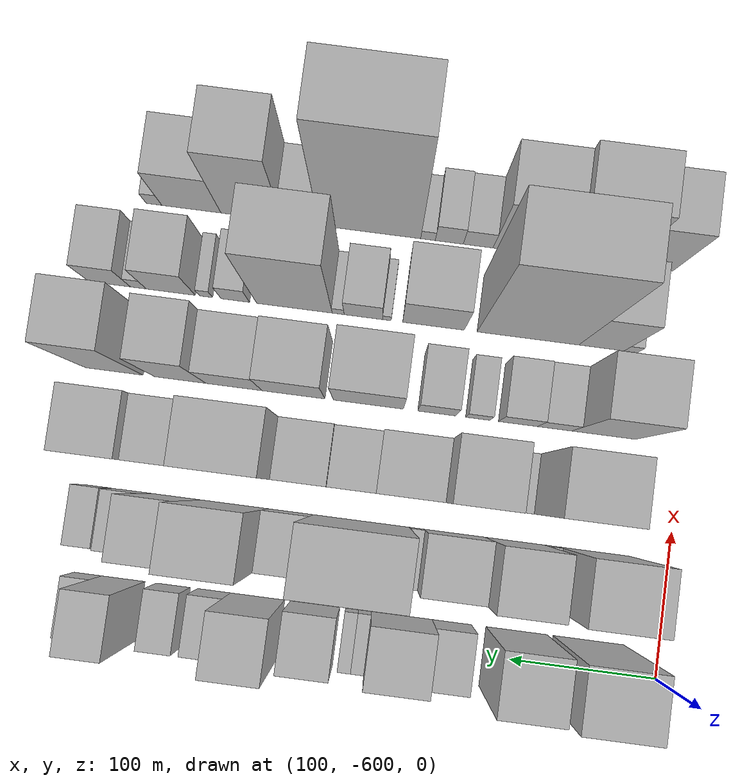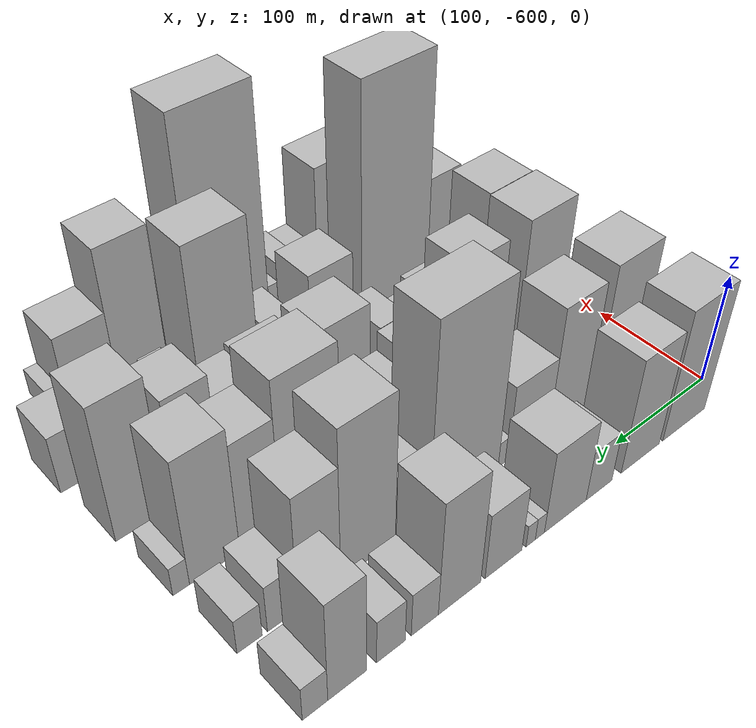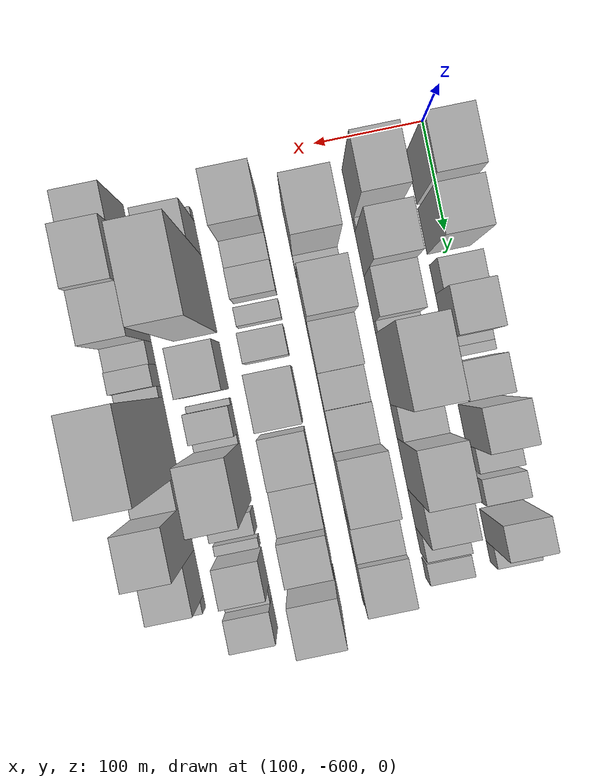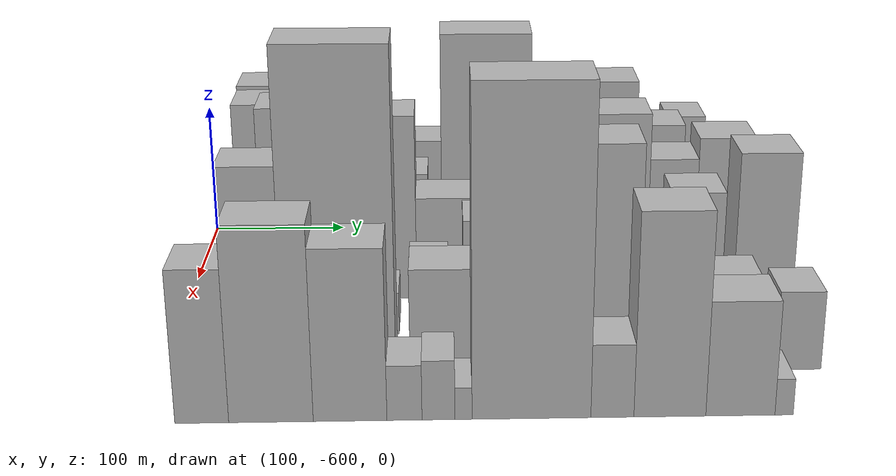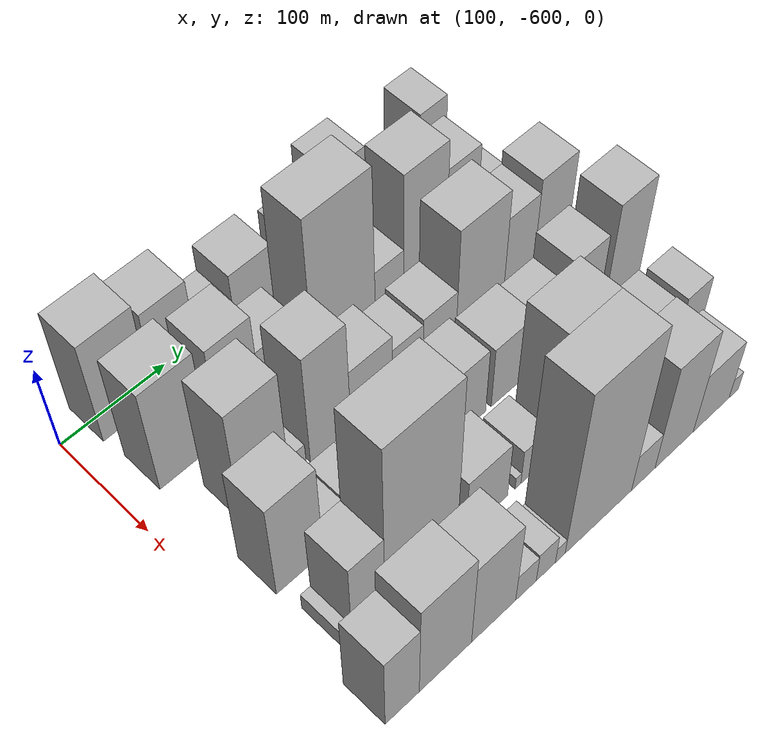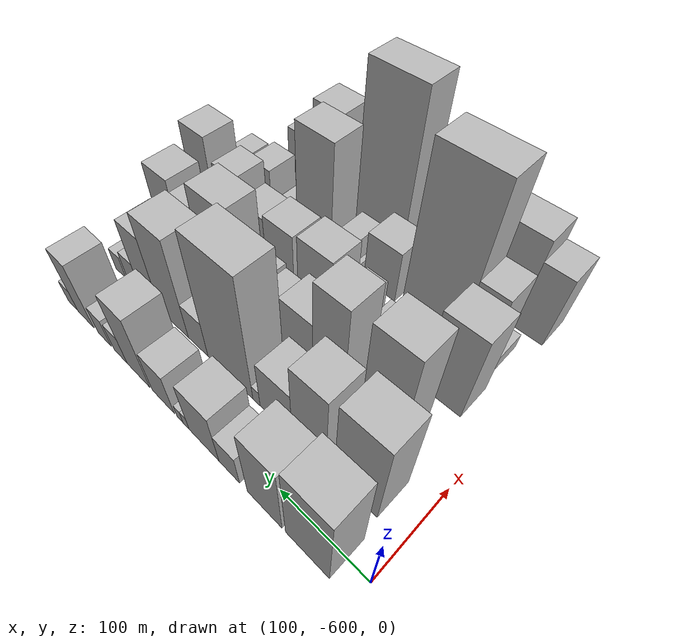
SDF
<sdf version="1.6">
 <world name="default">
  <model name="building_13">
   <static>1</static>
   <pose>100.0000 -551.4606 0 0.000000 0.000000 0.000000</pose>
   <link name="link">
    <pose>0 0 61.50 0 0 0</pose>
    <collision name="collision"><geometry><box><size>40.0000 48.3356 123.0000</size></box></geometry></collision>
    <visual name="visual">
     <cast_shadows>0</cast_shadows>
     <geometry><box><size>40.0000 48.3356 123.0000</size></box></geometry>
     <material>
      <script>
       <uri>model://HANNAS_wall/materials/scripts</uri>
       <uri>model://HANNAS_wall/materials/textures</uri>
       <name>vrc/HANNAS_wall</name>
      </script>
     </material>
    </visual>
   </link>
  </model>
  <model name="building_14">
   <static>1</static>
   <pose>100.0000 -502.3555 0 0.000000 0.000000 0.000000</pose>
   <link name="link">
    <pose>0 0 54.00 0 0 0</pose>
    <collision name="collision"><geometry><box><size>40.0000 41.8745 108.0000</size></box></geometry></collision>
    <visual name="visual">
     <cast_shadows>0</cast_shadows>
     <geometry><box><size>40.0000 41.8745 108.0000</size></box></geometry>
     <material>
      <script>
       <uri>model://HANNAS_wall/materials/scripts</uri>
       <uri>model://HANNAS_wall/materials/textures</uri>
       <name>vrc/HANNAS_wall</name>
      </script>
     </material>
    </visual>
   </link>
  </model>
  <model name="building_15">
   <static>1</static>
   <pose>100.0000 -457.9913 0 0.000000 0.000000 0.000000</pose>
   <link name="link">
    <pose>0 0 24.00 0 0 0</pose>
    <collision name="collision"><geometry><box><size>40.0000 26.8540 48.0000</size></box></geometry></collision>
    <visual name="visual">
     <cast_shadows>0</cast_shadows>
     <geometry><box><size>40.0000 26.8540 48.0000</size></box></geometry>
     <material>
      <script>
       <uri>model://HANNAS_wall/materials/scripts</uri>
       <uri>model://HANNAS_wall/materials/textures</uri>
       <name>vrc/HANNAS_wall</name>
      </script>
     </material>
    </visual>
   </link>
  </model>
  <model name="building_16">
   <static>1</static>
   <pose>100.0000 -423.7549 0 0.000000 0.000000 0.000000</pose>
   <link name="link">
    <pose>0 0 39.00 0 0 0</pose>
    <collision name="collision"><geometry><box><size>40.0000 41.6187 78.0000</size></box></geometry></collision>
    <visual name="visual">
     <cast_shadows>0</cast_shadows>
     <geometry><box><size>40.0000 41.6187 78.0000</size></box></geometry>
     <material>
      <script>
       <uri>model://HANNAS_wall/materials/scripts</uri>
       <uri>model://HANNAS_wall/materials/textures</uri>
       <name>vrc/HANNAS_wall</name>
      </script>
     </material>
    </visual>
   </link>
  </model>
  <model name="building_17">
   <static>1</static>
   <pose>100.0000 -398.5500 0 0.000000 0.000000 0.000000</pose>
   <link name="link">
    <pose>0 0 10.50 0 0 0</pose>
    <collision name="collision"><geometry><box><size>40.0000 8.7912 21.0000</size></box></geometry></collision>
    <visual name="visual">
     <cast_shadows>0</cast_shadows>
     <geometry><box><size>40.0000 8.7912 21.0000</size></box></geometry>
     <material>
      <script>
       <uri>model://HANNAS_wall/materials/scripts</uri>
       <uri>model://HANNAS_wall/materials/textures</uri>
       <name>vrc/HANNAS_wall</name>
      </script>
     </material>
    </visual>
   </link>
  </model>
  <model name="building_18">
   <static>1</static>
   <pose>100.0000 -389.7173 0 0.000000 0.000000 0.000000</pose>
   <link name="link">
    <pose>0 0 10.50 0 0 0</pose>
    <collision name="collision"><geometry><box><size>40.0000 8.8742 21.0000</size></box></geometry></collision>
    <visual name="visual">
     <cast_shadows>0</cast_shadows>
     <geometry><box><size>40.0000 8.8742 21.0000</size></box></geometry>
     <material>
      <script>
       <uri>model://HANNAS_wall/materials/scripts</uri>
       <uri>model://HANNAS_wall/materials/textures</uri>
       <name>vrc/HANNAS_wall</name>
      </script>
     </material>
    </visual>
   </link>
  </model>
  <model name="building_19">
   <static>1</static>
   <pose>100.0000 -364.3057 0 0.000000 0.000000 0.000000</pose>
   <link name="link">
    <pose>0 0 31.50 0 0 0</pose>
    <collision name="collision"><geometry><box><size>40.0000 33.9490 63.0000</size></box></geometry></collision>
    <visual name="visual">
     <cast_shadows>0</cast_shadows>
     <geometry><box><size>40.0000 33.9490 63.0000</size></box></geometry>
     <material>
      <script>
       <uri>model://HANNAS_wall/materials/scripts</uri>
       <uri>model://HANNAS_wall/materials/textures</uri>
       <name>vrc/HANNAS_wall</name>
      </script>
     </material>
    </visual>
   </link>
  </model>
  <model name="building_20">
   <static>1</static>
   <pose>100.0000 -324.7479 0 0.000000 0.000000 0.000000</pose>
   <link name="link">
    <pose>0 0 54.00 0 0 0</pose>
    <collision name="collision"><geometry><box><size>40.0000 37.1666 108.0000</size></box></geometry></collision>
    <visual name="visual">
     <cast_shadows>0</cast_shadows>
     <geometry><box><size>40.0000 37.1666 108.0000</size></box></geometry>
     <material>
      <script>
       <uri>model://HANNAS_wall/materials/scripts</uri>
       <uri>model://HANNAS_wall/materials/textures</uri>
       <name>vrc/HANNAS_wall</name>
      </script>
     </material>
    </visual>
   </link>
  </model>
  <model name="building_21">
   <static>1</static>
   <pose>100.0000 -294.7719 0 0.000000 0.000000 0.000000</pose>
   <link name="link">
    <pose>0 0 21.00 0 0 0</pose>
    <collision name="collision"><geometry><box><size>40.0000 22.7853 42.0000</size></box></geometry></collision>
    <visual name="visual">
     <cast_shadows>0</cast_shadows>
     <geometry><box><size>40.0000 22.7853 42.0000</size></box></geometry>
     <material>
      <script>
       <uri>model://HANNAS_wall/materials/scripts</uri>
       <uri>model://HANNAS_wall/materials/textures</uri>
       <name>vrc/HANNAS_wall</name>
      </script>
     </material>
    </visual>
   </link>
  </model>
  <model name="building_22">
   <static>1</static>
   <pose>100.0000 -266.7475 0 0.000000 0.000000 0.000000</pose>
   <link name="link">
    <pose>0 0 21.00 0 0 0</pose>
    <collision name="collision"><geometry><box><size>40.0000 23.2634 42.0000</size></box></geometry></collision>
    <visual name="visual">
     <cast_shadows>0</cast_shadows>
     <geometry><box><size>40.0000 23.2634 42.0000</size></box></geometry>
     <material>
      <script>
       <uri>model://HANNAS_wall/materials/scripts</uri>
       <uri>model://HANNAS_wall/materials/textures</uri>
       <name>vrc/HANNAS_wall</name>
      </script>
     </material>
    </visual>
   </link>
  </model>
  <model name="building_23">
   <static>1</static>
   <pose>100.0000 -232.1879 0 0.000000 0.000000 0.000000</pose>
   <link name="link">
    <pose>0 0 48.00 0 0 0</pose>
    <collision name="collision"><geometry><box><size>40.0000 29.8558 96.0000</size></box></geometry></collision>
    <visual name="visual">
     <cast_shadows>0</cast_shadows>
     <geometry><box><size>40.0000 29.8558 96.0000</size></box></geometry>
     <material>
      <script>
       <uri>model://HANNAS_wall/materials/scripts</uri>
       <uri>model://HANNAS_wall/materials/textures</uri>
       <name>vrc/HANNAS_wall</name>
      </script>
     </material>
    </visual>
   </link>
  </model>
  <model name="building_24">
   <static>1</static>
   <pose>100.0000 -207.7419 0 0.000000 0.000000 0.000000</pose>
   <link name="link">
    <pose>0 0 16.50 0 0 0</pose>
    <collision name="collision"><geometry><box><size>40.0000 19.0362 33.0000</size></box></geometry></collision>
    <visual name="visual">
     <cast_shadows>0</cast_shadows>
     <geometry><box><size>40.0000 19.0362 33.0000</size></box></geometry>
     <material>
      <script>
       <uri>model://HANNAS_wall/materials/scripts</uri>
       <uri>model://HANNAS_wall/materials/textures</uri>
       <name>vrc/HANNAS_wall</name>
      </script>
     </material>
    </visual>
   </link>
  </model>
  <model name="building_66">
   <static>1</static>
   <pose>160.0000 -547.9017 0 0.000000 0.000000 0.000000</pose>
   <link name="link">
    <pose>0 0 63.00 0 0 0</pose>
    <collision name="collision"><geometry><box><size>40.0000 48.3866 126.0000</size></box></geometry></collision>
    <visual name="visual">
     <cast_shadows>0</cast_shadows>
     <geometry><box><size>40.0000 48.3866 126.0000</size></box></geometry>
     <material>
      <script>
       <uri>model://HANNAS_wall/materials/scripts</uri>
       <uri>model://HANNAS_wall/materials/textures</uri>
       <name>vrc/HANNAS_wall</name>
      </script>
     </material>
    </visual>
   </link>
  </model>
  <model name="building_67">
   <static>1</static>
   <pose>160.0000 -519.0007 0 0.000000 0.000000 0.000000</pose>
   <link name="link">
    <pose>0 0 10.50 0 0 0</pose>
    <collision name="collision"><geometry><box><size>40.0000 9.4153 21.0000</size></box></geometry></collision>
    <visual name="visual">
     <cast_shadows>0</cast_shadows>
     <geometry><box><size>40.0000 9.4153 21.0000</size></box></geometry>
     <material>
      <script>
       <uri>model://HANNAS_wall/materials/scripts</uri>
       <uri>model://HANNAS_wall/materials/textures</uri>
       <name>vrc/HANNAS_wall</name>
      </script>
     </material>
    </visual>
   </link>
  </model>
  <model name="building_68">
   <static>1</static>
   <pose>160.0000 -493.6589 0 0.000000 0.000000 0.000000</pose>
   <link name="link">
    <pose>0 0 58.50 0 0 0</pose>
    <collision name="collision"><geometry><box><size>40.0000 41.2683 117.0000</size></box></geometry></collision>
    <visual name="visual">
     <cast_shadows>0</cast_shadows>
     <geometry><box><size>40.0000 41.2683 117.0000</size></box></geometry>
     <material>
      <script>
       <uri>model://HANNAS_wall/materials/scripts</uri>
       <uri>model://HANNAS_wall/materials/textures</uri>
       <name>vrc/HANNAS_wall</name>
      </script>
     </material>
    </visual>
   </link>
  </model>
  <model name="building_69">
   <static>1</static>
   <pose>160.0000 -452.0006 0 0.000000 0.000000 0.000000</pose>
   <link name="link">
    <pose>0 0 36.00 0 0 0</pose>
    <collision name="collision"><geometry><box><size>40.0000 42.0482 72.0000</size></box></geometry></collision>
    <visual name="visual">
     <cast_shadows>0</cast_shadows>
     <geometry><box><size>40.0000 42.0482 72.0000</size></box></geometry>
     <material>
      <script>
       <uri>model://HANNAS_wall/materials/scripts</uri>
       <uri>model://HANNAS_wall/materials/textures</uri>
       <name>vrc/HANNAS_wall</name>
      </script>
     </material>
    </visual>
   </link>
  </model>
  <model name="building_70">
   <static>1</static>
   <pose>160.0000 -425.9590 0 0.000000 0.000000 0.000000</pose>
   <link name="link">
    <pose>0 0 12.00 0 0 0</pose>
    <collision name="collision"><geometry><box><size>40.0000 10.0351 24.0000</size></box></geometry></collision>
    <visual name="visual">
     <cast_shadows>0</cast_shadows>
     <geometry><box><size>40.0000 10.0351 24.0000</size></box></geometry>
     <material>
      <script>
       <uri>model://HANNAS_wall/materials/scripts</uri>
       <uri>model://HANNAS_wall/materials/textures</uri>
       <name>vrc/HANNAS_wall</name>
      </script>
     </material>
    </visual>
   </link>
  </model>
  <model name="building_71">
   <static>1</static>
   <pose>160.0000 -388.1285 0 0.000000 0.000000 0.000000</pose>
   <link name="link">
    <pose>0 0 88.50 0 0 0</pose>
    <collision name="collision"><geometry><box><size>40.0000 65.6257 177.0000</size></box></geometry></collision>
    <visual name="visual">
     <cast_shadows>0</cast_shadows>
     <geometry><box><size>40.0000 65.6257 177.0000</size></box></geometry>
     <material>
      <script>
       <uri>model://HANNAS_wall/materials/scripts</uri>
       <uri>model://HANNAS_wall/materials/textures</uri>
       <name>vrc/HANNAS_wall</name>
      </script>
     </material>
    </visual>
   </link>
  </model>
  <model name="building_72">
   <static>1</static>
   <pose>160.0000 -339.8309 0 0.000000 0.000000 0.000000</pose>
   <link name="link">
    <pose>0 0 27.00 0 0 0</pose>
    <collision name="collision"><geometry><box><size>40.0000 30.9695 54.0000</size></box></geometry></collision>
    <visual name="visual">
     <cast_shadows>0</cast_shadows>
     <geometry><box><size>40.0000 30.9695 54.0000</size></box></geometry>
     <material>
      <script>
       <uri>model://HANNAS_wall/materials/scripts</uri>
       <uri>model://HANNAS_wall/materials/textures</uri>
       <name>vrc/HANNAS_wall</name>
      </script>
     </material>
    </visual>
   </link>
  </model>
  <model name="building_73">
   <static>1</static>
   <pose>160.0000 -300.9477 0 0.000000 0.000000 0.000000</pose>
   <link name="link">
    <pose>0 0 70.50 0 0 0</pose>
    <collision name="collision"><geometry><box><size>40.0000 46.7970 141.0000</size></box></geometry></collision>
    <visual name="visual">
     <cast_shadows>0</cast_shadows>
     <geometry><box><size>40.0000 46.7970 141.0000</size></box></geometry>
     <material>
      <script>
       <uri>model://HANNAS_wall/materials/scripts</uri>
       <uri>model://HANNAS_wall/materials/textures</uri>
       <name>vrc/HANNAS_wall</name>
      </script>
     </material>
    </visual>
   </link>
  </model>
  <model name="building_74">
   <static>1</static>
   <pose>160.0000 -260.0227 0 0.000000 0.000000 0.000000</pose>
   <link name="link">
    <pose>0 0 54.00 0 0 0</pose>
    <collision name="collision"><geometry><box><size>40.0000 35.0530 108.0000</size></box></geometry></collision>
    <visual name="visual">
     <cast_shadows>0</cast_shadows>
     <geometry><box><size>40.0000 35.0530 108.0000</size></box></geometry>
     <material>
      <script>
       <uri>model://HANNAS_wall/materials/scripts</uri>
       <uri>model://HANNAS_wall/materials/textures</uri>
       <name>vrc/HANNAS_wall</name>
      </script>
     </material>
    </visual>
   </link>
  </model>
  <model name="building_75">
   <static>1</static>
   <pose>160.0000 -230.6805 0 0.000000 0.000000 0.000000</pose>
   <link name="link">
    <pose>0 0 22.50 0 0 0</pose>
    <collision name="collision"><geometry><box><size>40.0000 23.6315 45.0000</size></box></geometry></collision>
    <visual name="visual">
     <cast_shadows>0</cast_shadows>
     <geometry><box><size>40.0000 23.6315 45.0000</size></box></geometry>
     <material>
      <script>
       <uri>model://HANNAS_wall/materials/scripts</uri>
       <uri>model://HANNAS_wall/materials/textures</uri>
       <name>vrc/HANNAS_wall</name>
      </script>
     </material>
    </visual>
   </link>
  </model>
  <model name="building_76">
   <static>1</static>
   <pose>160.0000 -205.2966 0 0.000000 0.000000 0.000000</pose>
   <link name="link">
    <pose>0 0 16.50 0 0 0</pose>
    <collision name="collision"><geometry><box><size>40.0000 19.1364 33.0000</size></box></geometry></collision>
    <visual name="visual">
     <cast_shadows>0</cast_shadows>
     <geometry><box><size>40.0000 19.1364 33.0000</size></box></geometry>
     <material>
      <script>
       <uri>model://HANNAS_wall/materials/scripts</uri>
       <uri>model://HANNAS_wall/materials/textures</uri>
       <name>vrc/HANNAS_wall</name>
      </script>
     </material>
    </visual>
   </link>
  </model>
  <model name="building_123">
   <static>1</static>
   <pose>220.0000 -523.9592 0 0.000000 0.000000 0.000000</pose>
   <link name="link">
    <pose>0 0 70.50 0 0 0</pose>
    <collision name="collision"><geometry><box><size>40.0000 47.1382 141.0000</size></box></geometry></collision>
    <visual name="visual">
     <cast_shadows>0</cast_shadows>
     <geometry><box><size>40.0000 47.1382 141.0000</size></box></geometry>
     <material>
      <script>
       <uri>model://HANNAS_wall/materials/scripts</uri>
       <uri>model://HANNAS_wall/materials/textures</uri>
       <name>vrc/HANNAS_wall</name>
      </script>
     </material>
    </visual>
   </link>
  </model>
  <model name="building_124">
   <static>1</static>
   <pose>220.0000 -492.1446 0 0.000000 0.000000 0.000000</pose>
   <link name="link">
    <pose>0 0 15.00 0 0 0</pose>
    <collision name="collision"><geometry><box><size>40.0000 16.4910 30.0000</size></box></geometry></collision>
    <visual name="visual">
     <cast_shadows>0</cast_shadows>
     <geometry><box><size>40.0000 16.4910 30.0000</size></box></geometry>
     <material>
      <script>
       <uri>model://HANNAS_wall/materials/scripts</uri>
       <uri>model://HANNAS_wall/materials/textures</uri>
       <name>vrc/HANNAS_wall</name>
      </script>
     </material>
    </visual>
   </link>
  </model>
  <model name="building_125">
   <static>1</static>
   <pose>220.0000 -459.4548 0 0.000000 0.000000 0.000000</pose>
   <link name="link">
    <pose>0 0 67.50 0 0 0</pose>
    <collision name="collision"><geometry><box><size>40.0000 40.8887 135.0000</size></box></geometry></collision>
    <visual name="visual">
     <cast_shadows>0</cast_shadows>
     <geometry><box><size>40.0000 40.8887 135.0000</size></box></geometry>
     <material>
      <script>
       <uri>model://HANNAS_wall/materials/scripts</uri>
       <uri>model://HANNAS_wall/materials/textures</uri>
       <name>vrc/HANNAS_wall</name>
      </script>
     </material>
    </visual>
   </link>
  </model>
  <model name="building_126">
   <static>1</static>
   <pose>220.0000 -417.3359 0 0.000000 0.000000 0.000000</pose>
   <link name="link">
    <pose>0 0 37.50 0 0 0</pose>
    <collision name="collision"><geometry><box><size>40.0000 43.3489 75.0000</size></box></geometry></collision>
    <visual name="visual">
     <cast_shadows>0</cast_shadows>
     <geometry><box><size>40.0000 43.3489 75.0000</size></box></geometry>
     <material>
      <script>
       <uri>model://HANNAS_wall/materials/scripts</uri>
       <uri>model://HANNAS_wall/materials/textures</uri>
       <name>vrc/HANNAS_wall</name>
      </script>
     </material>
    </visual>
   </link>
  </model>
  <model name="building_127">
   <static>1</static>
   <pose>220.0000 -379.7551 0 0.000000 0.000000 0.000000</pose>
   <link name="link">
    <pose>0 0 28.50 0 0 0</pose>
    <collision name="collision"><geometry><box><size>40.0000 31.8129 57.0000</size></box></geometry></collision>
    <visual name="visual">
     <cast_shadows>0</cast_shadows>
     <geometry><box><size>40.0000 31.8129 57.0000</size></box></geometry>
     <material>
      <script>
       <uri>model://HANNAS_wall/materials/scripts</uri>
       <uri>model://HANNAS_wall/materials/textures</uri>
       <name>vrc/HANNAS_wall</name>
      </script>
     </material>
    </visual>
   </link>
  </model>
  <model name="building_128">
   <static>1</static>
   <pose>220.0000 -345.9899 0 0.000000 0.000000 0.000000</pose>
   <link name="link">
    <pose>0 0 31.50 0 0 0</pose>
    <collision name="collision"><geometry><box><size>40.0000 35.7174 63.0000</size></box></geometry></collision>
    <visual name="visual">
     <cast_shadows>0</cast_shadows>
     <geometry><box><size>40.0000 35.7174 63.0000</size></box></geometry>
     <material>
      <script>
       <uri>model://HANNAS_wall/materials/scripts</uri>
       <uri>model://HANNAS_wall/materials/textures</uri>
       <name>vrc/HANNAS_wall</name>
      </script>
     </material>
    </visual>
   </link>
  </model>
  <model name="building_129">
   <static>1</static>
   <pose>220.0000 -301.9533 0 0.000000 0.000000 0.000000</pose>
   <link name="link">
    <pose>0 0 67.50 0 0 0</pose>
    <collision name="collision"><geometry><box><size>40.0000 52.3559 135.0000</size></box></geometry></collision>
    <visual name="visual">
     <cast_shadows>0</cast_shadows>
     <geometry><box><size>40.0000 52.3559 135.0000</size></box></geometry>
     <material>
      <script>
       <uri>model://HANNAS_wall/materials/scripts</uri>
       <uri>model://HANNAS_wall/materials/textures</uri>
       <name>vrc/HANNAS_wall</name>
      </script>
     </material>
    </visual>
   </link>
  </model>
  <model name="building_130">
   <static>1</static>
   <pose>220.0000 -258.8907 0 0.000000 0.000000 0.000000</pose>
   <link name="link">
    <pose>0 0 51.00 0 0 0</pose>
    <collision name="collision"><geometry><box><size>40.0000 33.7694 102.0000</size></box></geometry></collision>
    <visual name="visual">
     <cast_shadows>0</cast_shadows>
     <geometry><box><size>40.0000 33.7694 102.0000</size></box></geometry>
     <material>
      <script>
       <uri>model://HANNAS_wall/materials/scripts</uri>
       <uri>model://HANNAS_wall/materials/textures</uri>
       <name>vrc/HANNAS_wall</name>
      </script>
     </material>
    </visual>
   </link>
  </model>
  <model name="building_131">
   <static>1</static>
   <pose>220.0000 -222.2349 0 0.000000 0.000000 0.000000</pose>
   <link name="link">
    <pose>0 0 58.50 0 0 0</pose>
    <collision name="collision"><geometry><box><size>40.0000 39.5420 117.0000</size></box></geometry></collision>
    <visual name="visual">
     <cast_shadows>0</cast_shadows>
     <geometry><box><size>40.0000 39.5420 117.0000</size></box></geometry>
     <material>
      <script>
       <uri>model://HANNAS_wall/materials/scripts</uri>
       <uri>model://HANNAS_wall/materials/textures</uri>
       <name>vrc/HANNAS_wall</name>
      </script>
     </material>
    </visual>
   </link>
  </model>
  <model name="building_132">
   <static>1</static>
   <pose>220.0000 -196.1053 0 0.000000 0.000000 0.000000</pose>
   <link name="link">
    <pose>0 0 13.50 0 0 0</pose>
    <collision name="collision"><geometry><box><size>40.0000 12.7173 27.0000</size></box></geometry></collision>
    <visual name="visual">
     <cast_shadows>0</cast_shadows>
     <geometry><box><size>40.0000 12.7173 27.0000</size></box></geometry>
     <material>
      <script>
       <uri>model://HANNAS_wall/materials/scripts</uri>
       <uri>model://HANNAS_wall/materials/textures</uri>
       <name>vrc/HANNAS_wall</name>
      </script>
     </material>
    </visual>
   </link>
  </model>
  <model name="building_181">
   <static>1</static>
   <pose>280.0000 -545.8828 0 0.000000 0.000000 0.000000</pose>
   <link name="link">
    <pose>0 0 60.00 0 0 0</pose>
    <collision name="collision"><geometry><box><size>40.0000 44.4851 120.0000</size></box></geometry></collision>
    <visual name="visual">
     <cast_shadows>0</cast_shadows>
     <geometry><box><size>40.0000 44.4851 120.0000</size></box></geometry>
     <material>
      <script>
       <uri>model://HANNAS_wall/materials/scripts</uri>
       <uri>model://HANNAS_wall/materials/textures</uri>
       <name>vrc/HANNAS_wall</name>
      </script>
     </material>
    </visual>
   </link>
  </model>
  <model name="building_182">
   <static>1</static>
   <pose>280.0000 -511.6819 0 0.000000 0.000000 0.000000</pose>
   <link name="link">
    <pose>0 0 21.00 0 0 0</pose>
    <collision name="collision"><geometry><box><size>40.0000 23.9166 42.0000</size></box></geometry></collision>
    <visual name="visual">
     <cast_shadows>0</cast_shadows>
     <geometry><box><size>40.0000 23.9166 42.0000</size></box></geometry>
     <material>
      <script>
       <uri>model://HANNAS_wall/materials/scripts</uri>
       <uri>model://HANNAS_wall/materials/textures</uri>
       <name>vrc/HANNAS_wall</name>
      </script>
     </material>
    </visual>
   </link>
  </model>
  <model name="building_183">
   <static>1</static>
   <pose>280.0000 -486.2730 0 0.000000 0.000000 0.000000</pose>
   <link name="link">
    <pose>0 0 22.50 0 0 0</pose>
    <collision name="collision"><geometry><box><size>40.0000 26.9013 45.0000</size></box></geometry></collision>
    <visual name="visual">
     <cast_shadows>0</cast_shadows>
     <geometry><box><size>40.0000 26.9013 45.0000</size></box></geometry>
     <material>
      <script>
       <uri>model://HANNAS_wall/materials/scripts</uri>
       <uri>model://HANNAS_wall/materials/textures</uri>
       <name>vrc/HANNAS_wall</name>
      </script>
     </material>
    </visual>
   </link>
  </model>
  <model name="building_184">
   <static>1</static>
   <pose>280.0000 -458.4223 0 0.000000 0.000000 0.000000</pose>
   <link name="link">
    <pose>0 0 15.00 0 0 0</pose>
    <collision name="collision"><geometry><box><size>40.0000 16.8002 30.0000</size></box></geometry></collision>
    <visual name="visual">
     <cast_shadows>0</cast_shadows>
     <geometry><box><size>40.0000 16.8002 30.0000</size></box></geometry>
     <material>
      <script>
       <uri>model://HANNAS_wall/materials/scripts</uri>
       <uri>model://HANNAS_wall/materials/textures</uri>
       <name>vrc/HANNAS_wall</name>
      </script>
     </material>
    </visual>
   </link>
  </model>
  <model name="building_185">
   <static>1</static>
   <pose>280.0000 -429.8823 0 0.000000 0.000000 0.000000</pose>
   <link name="link">
    <pose>0 0 25.50 0 0 0</pose>
    <collision name="collision"><geometry><box><size>40.0000 26.2797 51.0000</size></box></geometry></collision>
    <visual name="visual">
     <cast_shadows>0</cast_shadows>
     <geometry><box><size>40.0000 26.2797 51.0000</size></box></geometry>
     <material>
      <script>
       <uri>model://HANNAS_wall/materials/scripts</uri>
       <uri>model://HANNAS_wall/materials/textures</uri>
       <name>vrc/HANNAS_wall</name>
      </script>
     </material>
    </visual>
   </link>
  </model>
  <model name="building_186">
   <static>1</static>
   <pose>280.0000 -382.4695 0 0.000000 0.000000 0.000000</pose>
   <link name="link">
    <pose>0 0 40.50 0 0 0</pose>
    <collision name="collision"><geometry><box><size>40.0000 48.5461 81.0000</size></box></geometry></collision>
    <visual name="visual">
     <cast_shadows>0</cast_shadows>
     <geometry><box><size>40.0000 48.5461 81.0000</size></box></geometry>
     <material>
      <script>
       <uri>model://HANNAS_wall/materials/scripts</uri>
       <uri>model://HANNAS_wall/materials/textures</uri>
       <name>vrc/HANNAS_wall</name>
      </script>
     </material>
    </visual>
   </link>
  </model>
  <model name="building_187">
   <static>1</static>
   <pose>280.0000 -330.3315 0 0.000000 0.000000 0.000000</pose>
   <link name="link">
    <pose>0 0 37.50 0 0 0</pose>
    <collision name="collision"><geometry><box><size>40.0000 43.7299 75.0000</size></box></geometry></collision>
    <visual name="visual">
     <cast_shadows>0</cast_shadows>
     <geometry><box><size>40.0000 43.7299 75.0000</size></box></geometry>
     <material>
      <script>
       <uri>model://HANNAS_wall/materials/scripts</uri>
       <uri>model://HANNAS_wall/materials/textures</uri>
       <name>vrc/HANNAS_wall</name>
      </script>
     </material>
    </visual>
   </link>
  </model>
  <model name="building_188">
   <static>1</static>
   <pose>280.0000 -288.8863 0 0.000000 0.000000 0.000000</pose>
   <link name="link">
    <pose>0 0 34.50 0 0 0</pose>
    <collision name="collision"><geometry><box><size>40.0000 39.1605 69.0000</size></box></geometry></collision>
    <visual name="visual">
     <cast_shadows>0</cast_shadows>
     <geometry><box><size>40.0000 39.1605 69.0000</size></box></geometry>
     <material>
      <script>
       <uri>model://HANNAS_wall/materials/scripts</uri>
       <uri>model://HANNAS_wall/materials/textures</uri>
       <name>vrc/HANNAS_wall</name>
      </script>
     </material>
    </visual>
   </link>
  </model>
  <model name="building_189">
   <static>1</static>
   <pose>280.0000 -251.3114 0 0.000000 0.000000 0.000000</pose>
   <link name="link">
    <pose>0 0 49.50 0 0 0</pose>
    <collision name="collision"><geometry><box><size>40.0000 35.9893 99.0000</size></box></geometry></collision>
    <visual name="visual">
     <cast_shadows>0</cast_shadows>
     <geometry><box><size>40.0000 35.9893 99.0000</size></box></geometry>
     <material>
      <script>
       <uri>model://HANNAS_wall/materials/scripts</uri>
       <uri>model://HANNAS_wall/materials/textures</uri>
       <name>vrc/HANNAS_wall</name>
      </script>
     </material>
    </visual>
   </link>
  </model>
  <model name="building_190">
   <static>1</static>
   <pose>280.0000 -205.2002 0 0.000000 0.000000 0.000000</pose>
   <link name="link">
    <pose>0 0 63.00 0 0 0</pose>
    <collision name="collision"><geometry><box><size>40.0000 40.2331 126.0000</size></box></geometry></collision>
    <visual name="visual">
     <cast_shadows>0</cast_shadows>
     <geometry><box><size>40.0000 40.2331 126.0000</size></box></geometry>
     <material>
      <script>
       <uri>model://HANNAS_wall/materials/scripts</uri>
       <uri>model://HANNAS_wall/materials/textures</uri>
       <name>vrc/HANNAS_wall</name>
      </script>
     </material>
    </visual>
   </link>
  </model>
  <model name="building_233">
   <static>1</static>
   <pose>340.0000 -558.0632 0 0.000000 0.000000 0.000000</pose>
   <link name="link">
    <pose>0 0 10.50 0 0 0</pose>
    <collision name="collision"><geometry><box><size>40.0000 9.3909 21.0000</size></box></geometry></collision>
    <visual name="visual">
     <cast_shadows>0</cast_shadows>
     <geometry><box><size>40.0000 9.3909 21.0000</size></box></geometry>
     <material>
      <script>
       <uri>model://HANNAS_wall/materials/scripts</uri>
       <uri>model://HANNAS_wall/materials/textures</uri>
       <name>vrc/HANNAS_wall</name>
      </script>
     </material>
    </visual>
   </link>
  </model>
  <model name="building_234">
   <static>1</static>
   <pose>340.0000 -537.4954 0 0.000000 0.000000 0.000000</pose>
   <link name="link">
    <pose>0 0 51.00 0 0 0</pose>
    <collision name="collision"><geometry><box><size>40.0000 31.7448 102.0000</size></box></geometry></collision>
    <visual name="visual">
     <cast_shadows>0</cast_shadows>
     <geometry><box><size>40.0000 31.7448 102.0000</size></box></geometry>
     <material>
      <script>
       <uri>model://HANNAS_wall/materials/scripts</uri>
       <uri>model://HANNAS_wall/materials/textures</uri>
       <name>vrc/HANNAS_wall</name>
      </script>
     </material>
    </visual>
   </link>
  </model>
  <model name="building_235">
   <static>1</static>
   <pose>340.0000 -486.0969 0 0.000000 0.000000 0.000000</pose>
   <link name="link">
    <pose>0 0 108.00 0 0 0</pose>
    <collision name="collision"><geometry><box><size>40.0000 71.0522 216.0000</size></box></geometry></collision>
    <visual name="visual">
     <cast_shadows>0</cast_shadows>
     <geometry><box><size>40.0000 71.0522 216.0000</size></box></geometry>
     <material>
      <script>
       <uri>model://HANNAS_wall/materials/scripts</uri>
       <uri>model://HANNAS_wall/materials/textures</uri>
       <name>vrc/HANNAS_wall</name>
      </script>
     </material>
    </visual>
   </link>
  </model>
  <model name="building_236">
   <static>1</static>
   <pose>340.0000 -420.0426 0 0.000000 0.000000 0.000000</pose>
   <link name="link">
    <pose>0 0 36.00 0 0 0</pose>
    <collision name="collision"><geometry><box><size>40.0000 43.0563 72.0000</size></box></geometry></collision>
    <visual name="visual">
     <cast_shadows>0</cast_shadows>
     <geometry><box><size>40.0000 43.0563 72.0000</size></box></geometry>
     <material>
      <script>
       <uri>model://HANNAS_wall/materials/scripts</uri>
       <uri>model://HANNAS_wall/materials/textures</uri>
       <name>vrc/HANNAS_wall</name>
      </script>
     </material>
    </visual>
   </link>
  </model>
  <model name="building_237">
   <static>1</static>
   <pose>340.0000 -387.4865 0 0.000000 0.000000 0.000000</pose>
   <link name="link">
    <pose>0 0 7.50 0 0 0</pose>
    <collision name="collision"><geometry><box><size>40.0000 6.0560 15.0000</size></box></geometry></collision>
    <visual name="visual">
     <cast_shadows>0</cast_shadows>
     <geometry><box><size>40.0000 6.0560 15.0000</size></box></geometry>
     <material>
      <script>
       <uri>model://HANNAS_wall/materials/scripts</uri>
       <uri>model://HANNAS_wall/materials/textures</uri>
       <name>vrc/HANNAS_wall</name>
      </script>
     </material>
    </visual>
   </link>
  </model>
  <model name="building_238">
   <static>1</static>
   <pose>340.0000 -371.0366 0 0.000000 0.000000 0.000000</pose>
   <link name="link">
    <pose>0 0 22.50 0 0 0</pose>
    <collision name="collision"><geometry><box><size>40.0000 26.8437 45.0000</size></box></geometry></collision>
    <visual name="visual">
     <cast_shadows>0</cast_shadows>
     <geometry><box><size>40.0000 26.8437 45.0000</size></box></geometry>
     <material>
      <script>
       <uri>model://HANNAS_wall/materials/scripts</uri>
       <uri>model://HANNAS_wall/materials/textures</uri>
       <name>vrc/HANNAS_wall</name>
      </script>
     </material>
    </visual>
   </link>
  </model>
  <model name="building_239">
   <static>1</static>
   <pose>340.0000 -353.4250 0 0.000000 0.000000 0.000000</pose>
   <link name="link">
    <pose>0 0 9.00 0 0 0</pose>
    <collision name="collision"><geometry><box><size>40.0000 8.3796 18.0000</size></box></geometry></collision>
    <visual name="visual">
     <cast_shadows>0</cast_shadows>
     <geometry><box><size>40.0000 8.3796 18.0000</size></box></geometry>
     <material>
      <script>
       <uri>model://HANNAS_wall/materials/scripts</uri>
       <uri>model://HANNAS_wall/materials/textures</uri>
       <name>vrc/HANNAS_wall</name>
      </script>
     </material>
    </visual>
   </link>
  </model>
  <model name="building_240">
   <static>1</static>
   <pose>340.0000 -322.7361 0 0.000000 0.000000 0.000000</pose>
   <link name="link">
    <pose>0 0 76.50 0 0 0</pose>
    <collision name="collision"><geometry><box><size>40.0000 52.9982 153.0000</size></box></geometry></collision>
    <visual name="visual">
     <cast_shadows>0</cast_shadows>
     <geometry><box><size>40.0000 52.9982 153.0000</size></box></geometry>
     <material>
      <script>
       <uri>model://HANNAS_wall/materials/scripts</uri>
       <uri>model://HANNAS_wall/materials/textures</uri>
       <name>vrc/HANNAS_wall</name>
      </script>
     </material>
    </visual>
   </link>
  </model>
  <model name="building_241">
   <static>1</static>
   <pose>340.0000 -281.2713 0 0.000000 0.000000 0.000000</pose>
   <link name="link">
    <pose>0 0 19.50 0 0 0</pose>
    <collision name="collision"><geometry><box><size>40.0000 19.9313 39.0000</size></box></geometry></collision>
    <visual name="visual">
     <cast_shadows>0</cast_shadows>
     <geometry><box><size>40.0000 19.9313 39.0000</size></box></geometry>
     <material>
      <script>
       <uri>model://HANNAS_wall/materials/scripts</uri>
       <uri>model://HANNAS_wall/materials/textures</uri>
       <name>vrc/HANNAS_wall</name>
      </script>
     </material>
    </visual>
   </link>
  </model>
  <model name="building_242">
   <static>1</static>
   <pose>340.0000 -260.7371 0 0.000000 0.000000 0.000000</pose>
   <link name="link">
    <pose>0 0 10.50 0 0 0</pose>
    <collision name="collision"><geometry><box><size>40.0000 9.1372 21.0000</size></box></geometry></collision>
    <visual name="visual">
     <cast_shadows>0</cast_shadows>
     <geometry><box><size>40.0000 9.1372 21.0000</size></box></geometry>
     <material>
      <script>
       <uri>model://HANNAS_wall/materials/scripts</uri>
       <uri>model://HANNAS_wall/materials/textures</uri>
       <name>vrc/HANNAS_wall</name>
      </script>
     </material>
    </visual>
   </link>
  </model>
  <model name="building_243">
   <static>1</static>
   <pose>340.0000 -235.9872 0 0.000000 0.000000 0.000000</pose>
   <link name="link">
    <pose>0 0 31.50 0 0 0</pose>
    <collision name="collision"><geometry><box><size>40.0000 34.3628 63.0000</size></box></geometry></collision>
    <visual name="visual">
     <cast_shadows>0</cast_shadows>
     <geometry><box><size>40.0000 34.3628 63.0000</size></box></geometry>
     <material>
      <script>
       <uri>model://HANNAS_wall/materials/scripts</uri>
       <uri>model://HANNAS_wall/materials/textures</uri>
       <name>vrc/HANNAS_wall</name>
      </script>
     </material>
    </visual>
   </link>
  </model>
  <model name="building_244">
   <static>1</static>
   <pose>340.0000 -213.2005 0 0.000000 0.000000 0.000000</pose>
   <link name="link">
    <pose>0 0 13.50 0 0 0</pose>
    <collision name="collision"><geometry><box><size>40.0000 11.2106 27.0000</size></box></geometry></collision>
    <visual name="visual">
     <cast_shadows>0</cast_shadows>
     <geometry><box><size>40.0000 11.2106 27.0000</size></box></geometry>
     <material>
      <script>
       <uri>model://HANNAS_wall/materials/scripts</uri>
       <uri>model://HANNAS_wall/materials/textures</uri>
       <name>vrc/HANNAS_wall</name>
      </script>
     </material>
    </visual>
   </link>
  </model>
  <model name="building_245">
   <static>1</static>
   <pose>340.0000 -193.0794 0 0.000000 0.000000 0.000000</pose>
   <link name="link">
    <pose>0 0 27.00 0 0 0</pose>
    <collision name="collision"><geometry><box><size>40.0000 29.0316 54.0000</size></box></geometry></collision>
    <visual name="visual">
     <cast_shadows>0</cast_shadows>
     <geometry><box><size>40.0000 29.0316 54.0000</size></box></geometry>
     <material>
      <script>
       <uri>model://HANNAS_wall/materials/scripts</uri>
       <uri>model://HANNAS_wall/materials/textures</uri>
       <name>vrc/HANNAS_wall</name>
      </script>
     </material>
    </visual>
   </link>
  </model>
  <model name="building_290">
   <static>1</static>
   <pose>400.0000 -564.5562 0 0.000000 0.000000 0.000000</pose>
   <link name="link">
    <pose>0 0 49.50 0 0 0</pose>
    <collision name="collision"><geometry><box><size>40.0000 31.9935 99.0000</size></box></geometry></collision>
    <visual name="visual">
     <cast_shadows>0</cast_shadows>
     <geometry><box><size>40.0000 31.9935 99.0000</size></box></geometry>
     <material>
      <script>
       <uri>model://HANNAS_wall/materials/scripts</uri>
       <uri>model://HANNAS_wall/materials/textures</uri>
       <name>vrc/HANNAS_wall</name>
      </script>
     </material>
    </visual>
   </link>
  </model>
  <model name="building_291">
   <static>1</static>
   <pose>400.0000 -523.4155 0 0.000000 0.000000 0.000000</pose>
   <link name="link">
    <pose>0 0 63.00 0 0 0</pose>
    <collision name="collision"><geometry><box><size>40.0000 50.2880 126.0000</size></box></geometry></collision>
    <visual name="visual">
     <cast_shadows>0</cast_shadows>
     <geometry><box><size>40.0000 50.2880 126.0000</size></box></geometry>
     <material>
      <script>
       <uri>model://HANNAS_wall/materials/scripts</uri>
       <uri>model://HANNAS_wall/materials/textures</uri>
       <name>vrc/HANNAS_wall</name>
      </script>
     </material>
    </visual>
   </link>
  </model>
  <model name="building_292">
   <static>1</static>
   <pose>400.0000 -476.2811 0 0.000000 0.000000 0.000000</pose>
   <link name="link">
    <pose>0 0 55.50 0 0 0</pose>
    <collision name="collision"><geometry><box><size>40.0000 43.9809 111.0000</size></box></geometry></collision>
    <visual name="visual">
     <cast_shadows>0</cast_shadows>
     <geometry><box><size>40.0000 43.9809 111.0000</size></box></geometry>
     <material>
      <script>
       <uri>model://HANNAS_wall/materials/scripts</uri>
       <uri>model://HANNAS_wall/materials/textures</uri>
       <name>vrc/HANNAS_wall</name>
      </script>
     </material>
    </visual>
   </link>
  </model>
  <model name="building_293">
   <static>1</static>
   <pose>400.0000 -443.8193 0 0.000000 0.000000 0.000000</pose>
   <link name="link">
    <pose>0 0 18.00 0 0 0</pose>
    <collision name="collision"><geometry><box><size>40.0000 20.9425 36.0000</size></box></geometry></collision>
    <visual name="visual">
     <cast_shadows>0</cast_shadows>
     <geometry><box><size>40.0000 20.9425 36.0000</size></box></geometry>
     <material>
      <script>
       <uri>model://HANNAS_wall/materials/scripts</uri>
       <uri>model://HANNAS_wall/materials/textures</uri>
       <name>vrc/HANNAS_wall</name>
      </script>
     </material>
    </visual>
   </link>
  </model>
  <model name="building_294">
   <static>1</static>
   <pose>400.0000 -423.5048 0 0.000000 0.000000 0.000000</pose>
   <link name="link">
    <pose>0 0 19.50 0 0 0</pose>
    <collision name="collision"><geometry><box><size>40.0000 19.6865 39.0000</size></box></geometry></collision>
    <visual name="visual">
     <cast_shadows>0</cast_shadows>
     <geometry><box><size>40.0000 19.6865 39.0000</size></box></geometry>
     <material>
      <script>
       <uri>model://HANNAS_wall/materials/scripts</uri>
       <uri>model://HANNAS_wall/materials/textures</uri>
       <name>vrc/HANNAS_wall</name>
      </script>
     </material>
    </visual>
   </link>
  </model>
  <model name="building_295">
   <static>1</static>
   <pose>400.0000 -408.5397 0 0.000000 0.000000 0.000000</pose>
   <link name="link">
    <pose>0 0 10.50 0 0 0</pose>
    <collision name="collision"><geometry><box><size>40.0000 10.2437 21.0000</size></box></geometry></collision>
    <visual name="visual">
     <cast_shadows>0</cast_shadows>
     <geometry><box><size>40.0000 10.2437 21.0000</size></box></geometry>
     <material>
      <script>
       <uri>model://HANNAS_wall/materials/scripts</uri>
       <uri>model://HANNAS_wall/materials/textures</uri>
       <name>vrc/HANNAS_wall</name>
      </script>
     </material>
    </visual>
   </link>
  </model>
  <model name="building_296">
   <static>1</static>
   <pose>400.0000 -367.7369 0 0.000000 0.000000 0.000000</pose>
   <link name="link">
    <pose>0 0 105.00 0 0 0</pose>
    <collision name="collision"><geometry><box><size>40.0000 71.3618 210.0000</size></box></geometry></collision>
    <visual name="visual">
     <cast_shadows>0</cast_shadows>
     <geometry><box><size>40.0000 71.3618 210.0000</size></box></geometry>
     <material>
      <script>
       <uri>model://HANNAS_wall/materials/scripts</uri>
       <uri>model://HANNAS_wall/materials/textures</uri>
       <name>vrc/HANNAS_wall</name>
      </script>
     </material>
    </visual>
   </link>
  </model>
  <model name="building_297">
   <static>1</static>
   <pose>400.0000 -319.0919 0 0.000000 0.000000 0.000000</pose>
   <link name="link">
    <pose>0 0 24.00 0 0 0</pose>
    <collision name="collision"><geometry><box><size>40.0000 25.9282 48.0000</size></box></geometry></collision>
    <visual name="visual">
     <cast_shadows>0</cast_shadows>
     <geometry><box><size>40.0000 25.9282 48.0000</size></box></geometry>
     <material>
      <script>
       <uri>model://HANNAS_wall/materials/scripts</uri>
       <uri>model://HANNAS_wall/materials/textures</uri>
       <name>vrc/HANNAS_wall</name>
      </script>
     </material>
    </visual>
   </link>
  </model>
  <model name="building_298">
   <static>1</static>
   <pose>400.0000 -284.4276 0 0.000000 0.000000 0.000000</pose>
   <link name="link">
    <pose>0 0 66.00 0 0 0</pose>
    <collision name="collision"><geometry><box><size>40.0000 43.4004 132.0000</size></box></geometry></collision>
    <visual name="visual">
     <cast_shadows>0</cast_shadows>
     <geometry><box><size>40.0000 43.4004 132.0000</size></box></geometry>
     <material>
      <script>
       <uri>model://HANNAS_wall/materials/scripts</uri>
       <uri>model://HANNAS_wall/materials/textures</uri>
       <name>vrc/HANNAS_wall</name>
      </script>
     </material>
    </visual>
   </link>
  </model>
  <model name="building_299">
   <static>1</static>
   <pose>400.0000 -241.8146 0 0.000000 0.000000 0.000000</pose>
   <link name="link">
    <pose>0 0 37.50 0 0 0</pose>
    <collision name="collision"><geometry><box><size>40.0000 41.8255 75.0000</size></box></geometry></collision>
    <visual name="visual">
     <cast_shadows>0</cast_shadows>
     <geometry><box><size>40.0000 41.8255 75.0000</size></box></geometry>
     <material>
      <script>
       <uri>model://HANNAS_wall/materials/scripts</uri>
       <uri>model://HANNAS_wall/materials/textures</uri>
       <name>vrc/HANNAS_wall</name>
      </script>
     </material>
    </visual>
   </link>
  </model>
  <model name="building_300">
   <static>1</static>
   <pose>400.0000 -215.3578 0 0.000000 0.000000 0.000000</pose>
   <link name="link">
    <pose>0 0 12.00 0 0 0</pose>
    <collision name="collision"><geometry><box><size>40.0000 11.0881 24.0000</size></box></geometry></collision>
    <visual name="visual">
     <cast_shadows>0</cast_shadows>
     <geometry><box><size>40.0000 11.0881 24.0000</size></box></geometry>
     <material>
      <script>
       <uri>model://HANNAS_wall/materials/scripts</uri>
       <uri>model://HANNAS_wall/materials/textures</uri>
       <name>vrc/HANNAS_wall</name>
      </script>
     </material>
    </visual>
   </link>
  </model>
 </world>
</sdf>
